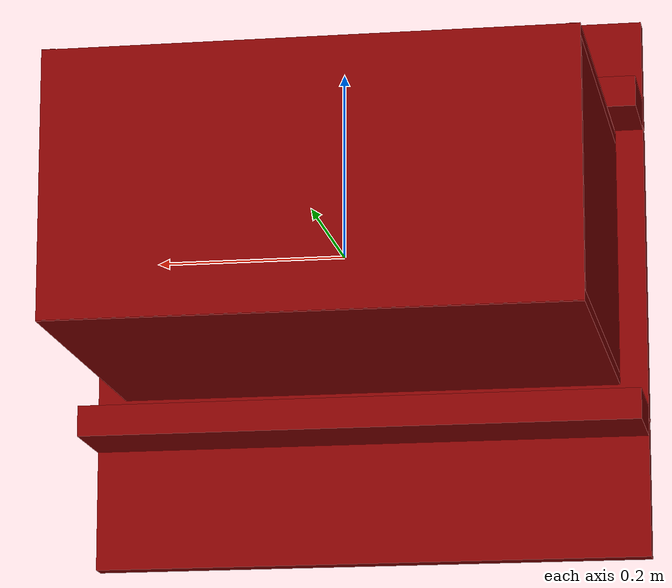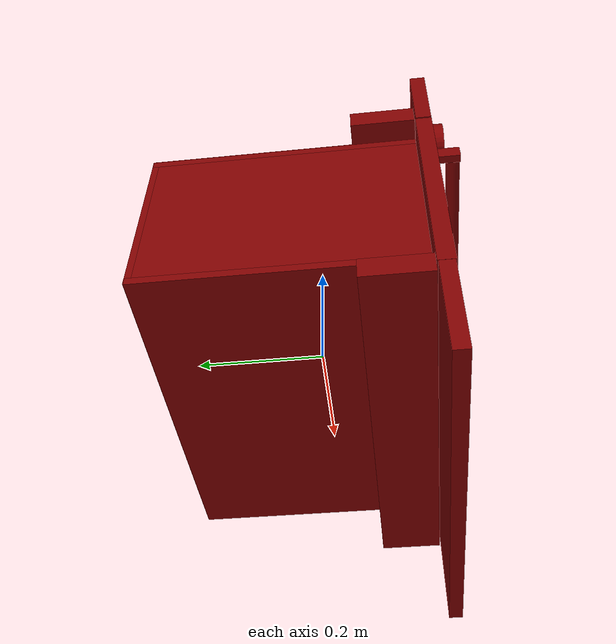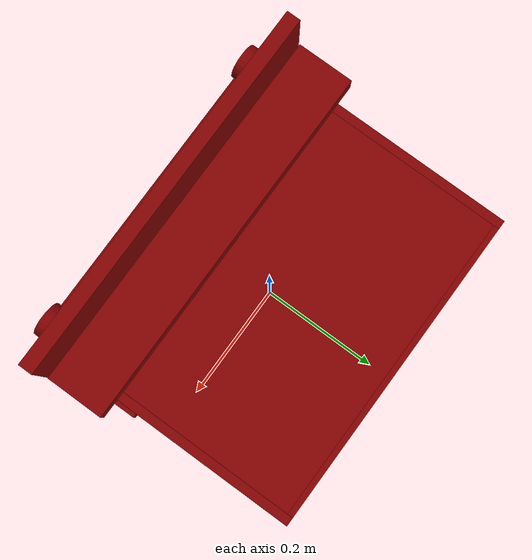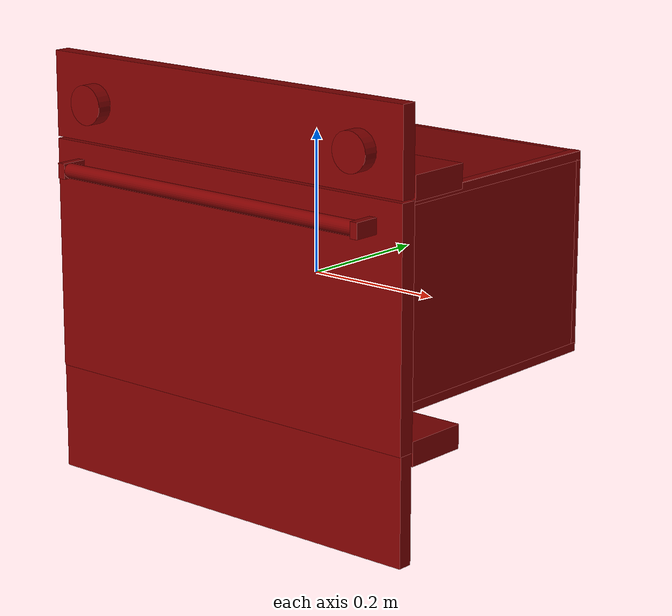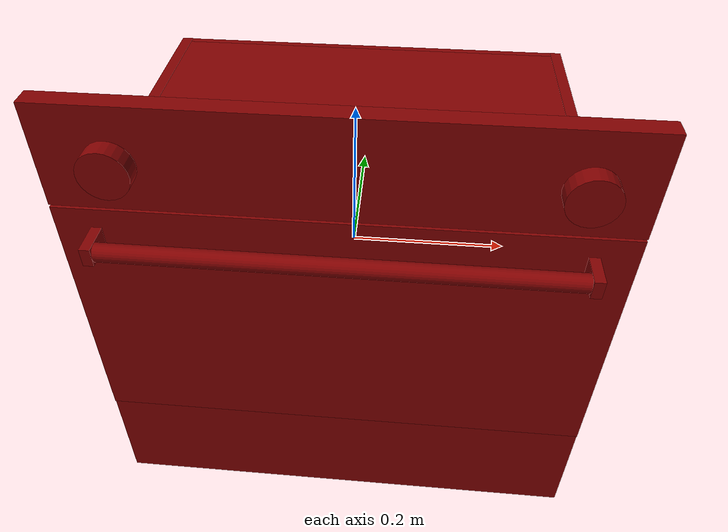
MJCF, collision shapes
<mujoco model="model">
  <compiler angle="radian"/>
  <asset>
    <mesh file="visuals/Body001.obj" name="Body001_vis"/>
    <mesh file="visuals/Container001.obj" name="Container001_vis"/>
    <mesh file="visuals/Door001.obj" name="Door001_vis"/>
    <mesh file="visuals/Door001_Clear.obj" name="Door001_Clear_vis"/>
    <mesh file="visuals/Knob001.obj" name="Knob001_vis"/>
    <mesh file="visuals/Knob002.obj" name="Knob002_vis"/>
    <mesh file="visuals/Shelf001.obj" name="Shelf001_vis"/>
    <texture file="visuals/T_BC001.png" name="Body001_material" type="2d"/>
    <material name="Body001_material" rgba="1 1 1 1.0" texture="Body001_material" shininess="0.4472135901451111" specular="0.3103448502657381"/>
    <texture file="visuals/T_BC001.png" name="Container001_material" type="2d"/>
    <material name="Container001_material" rgba="1 1 1 1.0" texture="Container001_material" shininess="0.4472135901451111" specular="0.3103448502657381"/>
    <texture file="visuals/T_BC001.png" name="Door001_material" type="2d"/>
    <material name="Door001_material" rgba="1 1 1 1.0" texture="Door001_material" shininess="0.4472135901451111" specular="0.3103448502657381"/>
    <texture file="visuals/T_BC001.png" name="Door001_Clear_material" type="2d"/>
    <material name="Door001_Clear_material" rgba="1 1 1 0.748031497001648" texture="Door001_Clear_material" shininess="0.4472135901451111" specular="0.3103448502657381"/>
    <texture file="visuals/T_BC001.png" name="Knob001_material" type="2d"/>
    <material name="Knob001_material" rgba="1 1 1 1.0" texture="Knob001_material" shininess="0.4472135901451111" specular="0.3103448502657381"/>
    <texture file="visuals/T_BC001.png" name="Knob002_material" type="2d"/>
    <material name="Knob002_material" rgba="1 1 1 1.0" texture="Knob002_material" shininess="0.4472135901451111" specular="0.3103448502657381"/>
    <texture file="visuals/T_BC001.png" name="Shelf001_material" type="2d"/>
    <material name="Shelf001_material" rgba="1 1 1 0.748031497001648" texture="Shelf001_material" shininess="0.4472135901451111" specular="0.3103448502657381"/>
  </asset>
  <default>
    <default class="visual">
      <geom conaffinity="0" contype="0" group="1" type="mesh"/>
    </default>
    <default class="collision">
      <geom group="0" rgba="0.5 0 0 0.5"/>
    </default>
    <default class="spawn">
      <geom group="0" rgba="1 1 1 0.5" contype="0" conaffinity="0"/>
      <site group="0" rgba="1 1 1 0.5"/>
    </default>
    <default class="region">
      <geom group="1" conaffinity="0" contype="0" rgba="0 1 0 0"/>
    </default>
  </default>
  <worldbody>
    <body>
      <body name="object">
        <geom mesh="Body001_vis" type="mesh" solimp="0.998 0.998 0.001" solref="0.001 1" density="100" friction="0.95 0.3 0.1" class="visual" material="Body001_material"/>
        <geom class="collision" type="box" pos="7.79158144723624e-05 -0.18085977435112 0.23981153964996338" size="0.30510708689689636 0.011399922892451286 0.05975450202822685" quat="1.0 0.0 0.0 0.0"/>
        <geom class="collision" type="box" pos="7.790341624058783e-05 -0.12014007568359375 0.19170036911964417" size="0.305107057094574 0.047089219093322754 0.01675836369395256" quat="1.0 0.0 0.0 0.0"/>
        <geom class="collision" type="box" pos="7.790341624058783e-05 -0.11988695710897446 -0.152041494846344" size="0.305107057094574 0.04758719354867935 0.01675836369395256" quat="1.0 0.0 0.0 0.0"/>
        <geom class="collision" type="box" pos="7.78909889049828e-05 -0.18037006258964539 -0.2249213457107544" size="0.305107057094574 0.010665347799658775 0.07519154250621796" quat="1.0 0.0 0.0 0.0"/>
        <geom class="collision" type="box" pos="-0.000507748278323561 0.031522177159786224 -0.10535602271556854" size="0.2744919955730438 0.19888101518154144 0.006149894557893276" quat="1.0 0.0 0.0 0.0"/>
        <geom class="collision" type="box" pos="-0.2677414119243622 0.031522177159786224 0.03502388298511505" size="0.007256760261952877 0.19888091087341309 0.1370256394147873" quat="1.0 0.0 0.0 0.0"/>
        <geom class="collision" type="box" pos="0.26672592759132385 0.031522177159786224 0.03502388298511505" size="0.007256757002323866 0.19888080656528473 0.13702557981014252" quat="1.0 0.0 0.0 0.0"/>
        <geom class="collision" type="box" pos="-0.000507748278323561 0.031522177159786224 0.16531430184841156" size="0.27449166774749756 0.19888070225715637 0.0061498843133449554" quat="1.0 0.0 0.0 0.0"/>
        <geom class="collision" type="box" pos="-0.000507748278323561 0.22625309228897095 0.03041798062622547" size="0.2744915783405304 0.004760340787470341 0.14104676246643066" quat="1.0 0.0 0.0 0.0"/>
        <geom class="collision" type="box" pos="-0.25294649600982666 0.021002786234021187 0.04385047033429146" size="0.008664640597999096 0.17135590314865112 0.008664640597999096" quat="1.0 0.0 0.0 0.0"/>
        <geom class="collision" type="box" pos="0.2507188320159912 0.021002786234021187 0.04385047033429146" size="0.008664640597999096 0.17135590314865112 0.008664640597999096" quat="1.0 0.0 0.0 0.0"/>
        <geom class="collision" type="box" pos="-0.25294649600982666 0.021002786234021187 -0.034448590129613876" size="0.008664640597999096 0.17135590314865112 0.008664640597999096" quat="1.0 0.0 0.0 0.0"/>
        <geom class="collision" type="box" pos="0.2507188320159912 0.021002786234021187 -0.034448590129613876" size="0.008664640597999096 0.17135590314865112 0.008664640597999096" quat="1.0 0.0 0.0 0.0"/>
        <body name="Container001">
          <joint axis="0.0 -1.0 0.0" pos="-0.00019949913257732987 0.020662503316998482 0.05219949781894684" limited="true" name="Container001_joint" range="0.0 0.25" type="slide" damping="1" frictionloss="1" armature=".01" stiffness="0.05"/>
          <geom mesh="Container001_vis" type="mesh" solimp="0.998 0.998 0.001" solref="0.001 1" density="100" friction="0.95 0.3 0.1" class="visual" material="Container001_material"/>
          <geom class="collision" type="box" pos="0.0003535874420776963 0.01977986842393875 0.04853183403611183" size="0.18624341487884521 0.10384239256381989 0.0024547104258090258" quat="1.0 0.0 0.0 0.0"/>
          <geom class="collision" type="box" pos="0.0003535874420776963 -0.11797607690095901 0.05598168447613716" size="0.2549816966056824 0.016404375433921814 0.0020366499666124582" quat="1.0 0.0 0.0 0.0"/>
          <geom class="collision" type="box" pos="0.0003535874420776963 0.162602499127388 0.05598168447613716" size="0.2549816966056824 0.012596420012414455 0.0020366492681205273" quat="1.0 0.0 0.0 0.0"/>
          <geom class="collision" type="box" pos="0.2386234998703003 0.02419474720954895 0.05598168447613716" size="0.017725635319948196 0.1252823770046234 0.0019596966449171305" quat="1.0 0.0 0.0 0.0"/>
          <geom class="collision" type="box" pos="-0.23787790536880493 0.02419474720954895 0.05598168447613716" size="0.017725637182593346 0.1252824068069458 0.0019596971105784178" quat="1.0 0.0 0.0 0.0"/>
          <geom class="collision" type="box" pos="-0.20319604873657227 0.024190183728933334 0.053060781210660934" size="0.017238622531294823 0.12505391240119934 0.0015357480151578784" quat="0.990329384803772 0.0 0.1387363225221634 0.0"/>
          <geom class="collision" type="box" pos="0.20454658567905426 0.024190183728933334 0.052264854311943054" size="0.017238622531294823 0.12505391240119934 0.0015357480151578784" quat="0.992330014705658 0.0 -0.12361680716276169 0.0"/>
          <geom class="collision" type="box" pos="0.0003535874420776963 0.13742923736572266 0.053719766438007355" size="0.22087109088897705 0.01306645292788744 0.002036644844338298" quat="0.9829722046852112 0.1837543249130249 0.0 0.0"/>
          <geom class="collision" type="box" pos="0.0003535874420776963 -0.09151864796876907 0.052081502974033356" size="0.22087109088897705 0.011247199960052967 0.0020366450771689415" quat="0.9696114659309387 -0.2446499913930893 -0.0 0.0"/>
        </body>
        <body name="Door001">
          <joint axis="1.0 0.0 0.0" pos="0.0 -0.1908930093050003 -0.14623498916625977" limited="true" name="Door001_joint" range="0.0 1.15" type="hinge" damping="5" frictionloss="1" armature=".01" stiffness="0.05" springref="-1"/>
          <geom mesh="Door001_vis" type="mesh" solimp="0.998 0.998 0.001" solref="0.001 1" density="100" friction="0.95 0.3 0.1" class="visual" material="Door001_material"/>
          <geom class="collision" type="box" pos="-1.1059455573558807e-08 -0.18038427829742432 0.013588802888989449" size="0.3051844537258148 0.01188710704445839 0.1634088158607483" quat="1.0 0.0 0.0 0.0"/>
          <geom class="collision" type="box" pos="-0.2597992718219757 -0.2117980420589447 0.142881840467453" size="0.005828931927680969 0.018791288137435913 0.010802379809319973" quat="1.0 0.0 0.0 0.0"/>
          <geom class="collision" type="box" pos="0.2591598629951477 -0.2117980420589447 0.142881840467453" size="0.005828931927680969 0.018791288137435913 0.010802379809319973" quat="1.0 0.0 0.0 0.0"/>
          <geom class="collision" type="cylinder" pos="-0.0011816835030913353 -0.21987034380435944 0.1427207589149475" size="0.010430019348859787 0.25574082136154175" quat="0.7071068286895752 -0.0 0.7071067690849304 0.0"/>
          <body name="Door001_Clear">
            <geom mesh="Door001_Clear_vis" type="mesh" solimp="0.998 0.998 0.001" solref="0.001 1" density="100" friction="0.95 0.3 0.1" class="visual" material="Door001_Clear_material"/>
            <geom class="collision" type="box" pos="-0.00054371845908463 -0.17795288562774658 0.01177268847823143" size="0.3020324110984802 0.0028342439327389 0.15917429327964783" quat="1.0 0.0 0.0 0.0"/>
          </body>
        </body>
        <body name="Knob001">
          <joint axis="0.0 1.0 0.0" pos="-0.227180615067482 -0.20208099484443665 0.2351512312889099" limited="true" name="Knob001_joint" range="0.0 4.014257279586958" type="hinge" damping="0.05" armature="0.001"/>
          <geom mesh="Knob001_vis" type="mesh" solimp="0.998 0.998 0.001" solref="0.001 1" density="100" friction="0.95 0.3 0.1" class="visual" material="Knob001_material"/>
          <geom class="collision" type="cylinder" pos="-0.2271559238433838 -0.20405323803424835 0.2352123260498047" size="0.02737467736005783 0.010640989989042282" quat="0.7071068286895752 -0.7071067690849304 -0.0 0.0"/>
        </body>
        <body name="Knob002">
          <joint axis="0.0 1.0 0.0" pos="0.23746922612190247 -0.20208099484443665 0.2351512312889099" limited="true" name="Knob002_joint" range="0.0 3.141592653589793" type="hinge" damping="0.05" armature="0.001"/>
          <geom mesh="Knob002_vis" type="mesh" solimp="0.998 0.998 0.001" solref="0.001 1" density="100" friction="0.95 0.3 0.1" class="visual" material="Knob002_material"/>
          <geom class="collision" type="cylinder" pos="0.23730787634849548 -0.20405323803424835 0.23517808318138123" size="0.027155090123414993 0.010551785118877888" quat="0.7071068286895752 -0.7071067690849304 -0.0 0.0"/>
        </body>
        <body name="Shelf001">
          <joint axis="0.0 -1.0 0.0" pos="-0.00019900321785826236 0.010073499754071236 -0.02277500182390213" limited="true" name="Shelf001_joint" range="0.0 0.25" type="slide" damping="1" frictionloss="1" armature=".01" stiffness="0.05"/>
          <geom mesh="Shelf001_vis" type="mesh" solimp="0.998 0.998 0.001" solref="0.001 1" density="100" friction="0.95 0.3 0.1" class="visual" material="Shelf001_material"/>
          <geom class="collision" type="box" pos="-0.0009256050689145923 0.009680459275841713 -0.022622818127274513" size="0.25634822249412537 0.12666618824005127 0.0023985111620277166" quat="1.0 0.0 0.0 0.0"/>
        </body>
        <geom class="region" name="reg_main" type="box" pos="-7.450580596923828e-09 0.01927849091589451 5.551115123125783e-17" size="0.3051849901676178 0.2107664942741394 0.29956600069999695"/>
        <geom class="region" name="reg_int" type="box" pos="0.0004647970199584961 0.025835342705249786 0.02943405881524086" size="0.25756630301475525 0.19060683995485306 0.12895993515849113"/>
      </body>
    </body>
  </worldbody>
  <actuator>
    <motor name="Container001_joint_actuator" joint="Container001_joint" gear="10"/>
    <motor name="Door001_joint_actuator" joint="Door001_joint" gear="50"/>
    <motor name="Knob001_joint_actuator" joint="Knob001_joint" gear="50"/>
    <motor name="Knob002_joint_actuator" joint="Knob002_joint" gear="50"/>
    <motor name="Shelf001_joint_actuator" joint="Shelf001_joint" gear="50"/>
  </actuator>
</mujoco>
